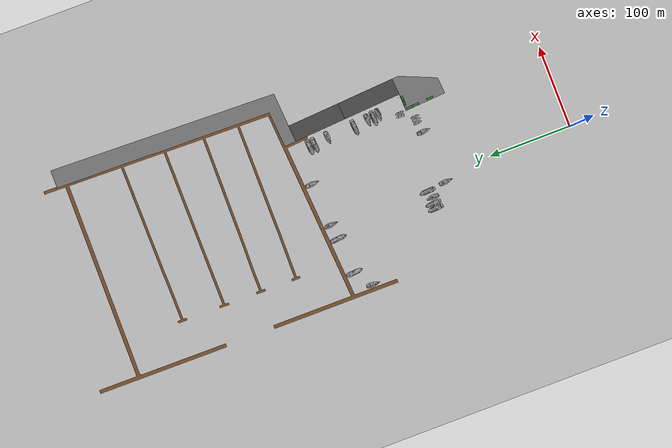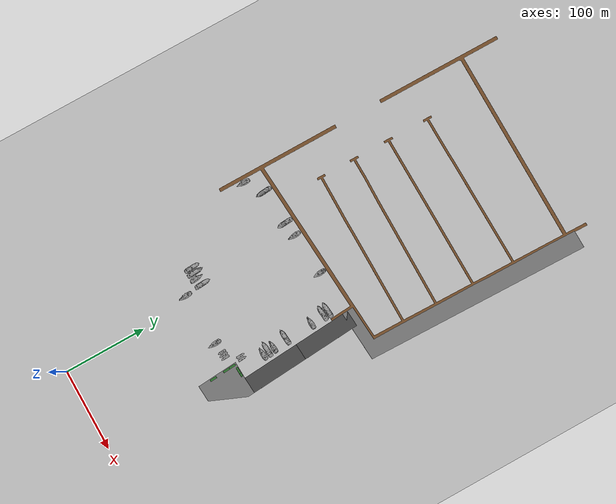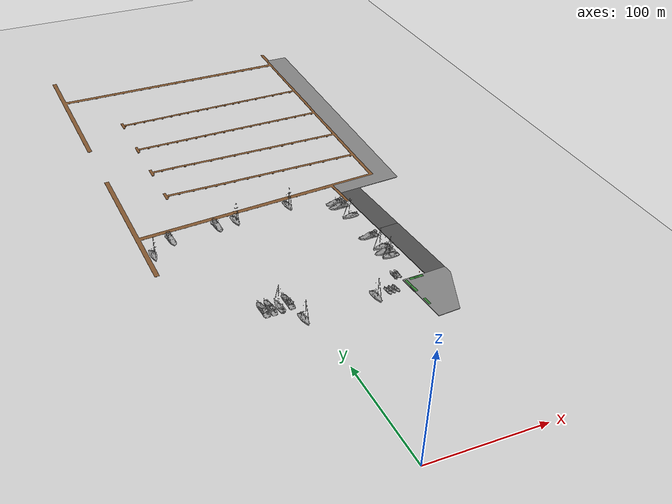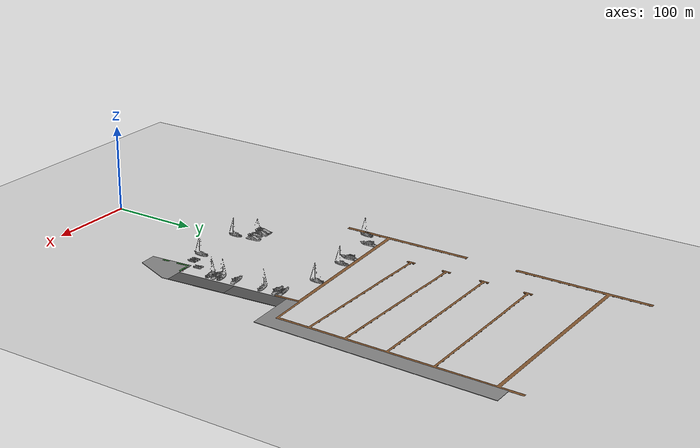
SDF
<sdf version="1.7">
 <world name="default">
  <model name="ground_plane">
   <static>1</static>
   <link name="link">
    <collision name="collision">
     <geometry><plane><normal>0 0 1</normal><size>100 100</size></plane></geometry>
     <surface><friction><ode><mu>100</mu><mu2>50</mu2></ode></friction></surface>
    </collision>
    <visual name="visual">
     <cast_shadows>0</cast_shadows>
     <geometry><plane><normal>0 0 1</normal><size>100 100</size></plane></geometry>
     <material>
      <script><uri>file://media/materials/scripts/gazebo.material</uri><name>Gazebo/Grey</name></script>
     </material>
    </visual>
   </link>
  </model>
  <model name="Marina_Zona_B">
   <link name="link">
    <inertial>
     <mass>100000</mass>
     <inertia><ixx>0</ixx><ixy>0</ixy><ixz>0</ixz><iyy>0</iyy><iyz>0</iyz><izz>0</izz></inertia>
    </inertial>
    <visual name="visual">
     <geometry>
      <mesh>
       <uri>/home/albert/marinero_ws/src/marinero_simulations/models/Marina_Zona_B/meshes/Marina_Zona_B.stl</uri>
       <scale>1 1 1</scale>
      </mesh>
     </geometry>
     <material>
      <script><uri>file://media/materials/scripts/gazebo.material</uri><name>Gazebo/Brown</name></script>
      <ambient>0.278 0.129 0.02 1</ambient>
      <diffuse>0.278 0.129 0.02 1</diffuse>
      <specular>0.278 0.129 0.02 1</specular>
      <emissive>0 0 0 1</emissive>
      <shader type="pixel"><normal_map>__default__</normal_map></shader>
     </material>
    </visual>
    <collision name="collision">
     <geometry>
      <mesh>
       <uri>/home/albert/marinero_ws/src/marinero_simulations/models/Marina_Zona_B/meshes/Marina_Zona_B.stl</uri>
       <scale>1 1 1</scale>
      </mesh>
     </geometry>
     <surface>
      <friction>
       <ode><mu>0.9</mu><mu2>0.9</mu2><fdir1>0 0 0</fdir1><slip1>0.001</slip1><slip2>1e-05</slip2></ode>
       <torsional>
        <coefficient>1</coefficient>
        <patch_radius>0</patch_radius>
        <surface_radius>0</surface_radius>
        <use_patch_radius>1</use_patch_radius>
        <ode><slip>0</slip></ode>
       </torsional>
      </friction>
      <bounce><restitution_coefficient>0</restitution_coefficient><threshold>1000</threshold></bounce>
      <contact>
       <collide_without_contact>0</collide_without_contact>
       <collide_without_contact_bitmask>0</collide_without_contact_bitmask>
       <collide_bitmask>1</collide_bitmask>
       <ode>
        <soft_cfm>0</soft_cfm>
        <soft_erp>0.2</soft_erp>
        <kp>1e+11</kp>
        <kd>100</kd>
        <max_vel>10</max_vel>
        <min_depth>0.001</min_depth>
       </ode>
       <bullet>
        <split_impulse>1</split_impulse>
        <split_impulse_penetration_threshold>-0.01</split_impulse_penetration_threshold>
        <soft_cfm>0</soft_cfm>
        <soft_erp>0.2</soft_erp>
        <kp>1e+11</kp>
        <kd>100</kd>
       </bullet>
      </contact>
     </surface>
    </collision>
   </link>
   <static>1</static>
   <pose>94.3188 292.84 0.08 0 -0 0</pose>
  </model>
  <model name="asphalt_plane_1">
   <link name="link">
    <pose>0 0 1.015 0 -0 0</pose>
    <inertial>
     <mass>1</mass>
     <inertia><ixx>1</ixx><ixy>0</ixy><ixz>0</ixz><iyy>1</iyy><iyz>0</iyz><izz>1</izz></inertia>
    </inertial>
    <visual name="visual">
     <cast_shadows>0</cast_shadows>
     <geometry><box><size>70 20 0.5</size></box></geometry>
     <material>
      <script>
       <uri>model://asphalt_plane/materials/scripts</uri>
       <uri>model://asphalt_plane/materials/textures</uri>
       <name>vrc/asphalt</name>
      </script>
      <shader type="pixel"><normal_map>__default__</normal_map></shader>
      <ambient>0.5 0.5 0.5 1</ambient>
      <diffuse>0.5 0.5 0.5 1</diffuse>
      <specular>0.2 0.2 0.2 1</specular>
      <emissive>0 0 0 1</emissive>
     </material>
    </visual>
    <collision name="collision">
     <geometry><box><size>70 20 0.5</size></box></geometry>
     <surface>
      <friction>
       <ode><mu>1</mu><mu2>1</mu2><fdir1>0 0 0</fdir1><slip1>0.001</slip1><slip2>1e-05</slip2></ode>
       <torsional>
        <coefficient>1</coefficient>
        <patch_radius>0</patch_radius>
        <surface_radius>0</surface_radius>
        <use_patch_radius>1</use_patch_radius>
        <ode><slip>0</slip></ode>
       </torsional>
      </friction>
      <bounce><restitution_coefficient>0</restitution_coefficient><threshold>1e+06</threshold></bounce>
      <contact>
       <collide_without_contact>0</collide_without_contact>
       <collide_without_contact_bitmask>1</collide_without_contact_bitmask>
       <collide_bitmask>1</collide_bitmask>
       <ode>
        <soft_cfm>0</soft_cfm>
        <soft_erp>0.2</soft_erp>
        <kp>1e+13</kp>
        <kd>1</kd>
        <max_vel>0.01</max_vel>
        <min_depth>0</min_depth>
       </ode>
       <bullet>
        <split_impulse>1</split_impulse>
        <split_impulse_penetration_threshold>-0.01</split_impulse_penetration_threshold>
        <soft_cfm>0</soft_cfm>
        <soft_erp>0.2</soft_erp>
        <kp>1e+13</kp>
        <kd>1</kd>
       </bullet>
      </contact>
     </surface>
    </collision>
   </link>
   <static>1</static>
   <pose>113.068 209.915 0 0 0 -1.5</pose>
  </model>
  <model name="asphalt_plane_1_clone">
   <link name="link">
    <pose>0 0 1.015 0 -0 0</pose>
    <inertial>
     <mass>1</mass>
     <inertia><ixx>1</ixx><ixy>0</ixy><ixz>0</ixz><iyy>1</iyy><iyz>0</iyz><izz>1</izz></inertia>
    </inertial>
    <visual name="visual">
     <cast_shadows>0</cast_shadows>
     <geometry><box><size>70 20 0.5</size></box></geometry>
     <material>
      <script>
       <uri>model://asphalt_plane/materials/scripts</uri>
       <uri>model://asphalt_plane/materials/textures</uri>
       <name>vrc/asphalt</name>
      </script>
      <shader type="pixel"><normal_map>__default__</normal_map></shader>
      <ambient>0.5 0.5 0.5 1</ambient>
      <diffuse>0.5 0.5 0.5 1</diffuse>
      <specular>0.2 0.2 0.2 1</specular>
      <emissive>0 0 0 1</emissive>
     </material>
    </visual>
    <collision name="collision">
     <geometry><box><size>70 20 0.5</size></box></geometry>
     <surface>
      <friction>
       <ode><mu>1</mu><mu2>1</mu2><fdir1>0 0 0</fdir1><slip1>0.001</slip1><slip2>1e-05</slip2></ode>
       <torsional>
        <coefficient>1</coefficient>
        <patch_radius>0</patch_radius>
        <surface_radius>0</surface_radius>
        <use_patch_radius>1</use_patch_radius>
        <ode><slip>0</slip></ode>
       </torsional>
      </friction>
      <bounce><restitution_coefficient>0</restitution_coefficient><threshold>1e+06</threshold></bounce>
      <contact>
       <collide_without_contact>0</collide_without_contact>
       <collide_without_contact_bitmask>1</collide_without_contact_bitmask>
       <collide_bitmask>1</collide_bitmask>
       <ode>
        <soft_cfm>0</soft_cfm>
        <soft_erp>0.2</soft_erp>
        <kp>1e+13</kp>
        <kd>1</kd>
        <max_vel>0.01</max_vel>
        <min_depth>0</min_depth>
       </ode>
       <bullet>
        <split_impulse>1</split_impulse>
        <split_impulse_penetration_threshold>-0.01</split_impulse_penetration_threshold>
        <soft_cfm>0</soft_cfm>
        <soft_erp>0.2</soft_erp>
        <kp>1e+13</kp>
        <kd>1</kd>
       </bullet>
      </contact>
     </surface>
    </collision>
   </link>
   <static>1</static>
   <pose>108.119 279.695 0 0 0 -1.5</pose>
  </model>
  <model name="asphalt_plane_angle_section_0">
   <link name="link">
    <inertial>
     <mass>1</mass>
     <inertia><ixx>1</ixx><ixy>0</ixy><ixz>0</ixz><iyy>1</iyy><iyz>0</iyz><izz>1</izz></inertia>
    </inertial>
    <pose>0 0 1.015 0 0 -1.4967</pose>
    <visual name="visual">
     <geometry>
      <mesh>
       <uri>/home/albert/marinero_ws/src/marinero_simulations/models/asphalt_plane_angle_section/meshes/asphalt_plane_angle_section.dae</uri>
       <scale>1 1 5</scale>
      </mesh>
     </geometry>
     <material>
      <script>
       <uri>/home/albert/marinero_ws/src/marinero_simulations/models/asphalt_plane_angle_section/materials/scripts</uri>
       <uri>/home/albert/marinero_ws/src/marinero_simulations/models/asphalt_plane_angle_section/materials/textures</uri>
       <name>asphalt/texture</name>
      </script>
      <shader type="pixel"><normal_map>__default__</normal_map></shader>
      <ambient>0.5 0.5 0.5 1</ambient>
      <diffuse>0.5 0.5 0.5 1</diffuse>
      <specular>0.2 0.2 0.2 1</specular>
      <emissive>0 0 0 1</emissive>
     </material>
    </visual>
    <collision name="collision">
     <geometry>
      <mesh>
       <uri>/home/albert/marinero_ws/src/marinero_simulations/models/asphalt_plane_angle_section/meshes/asphalt_plane_angle_section.dae</uri>
       <scale>1 1 5</scale>
      </mesh>
     </geometry>
     <surface>
      <friction>
       <ode><mu>1</mu><mu2>1</mu2><fdir1>0 0 0</fdir1><slip1>0.001</slip1><slip2>1e-05</slip2></ode>
       <torsional>
        <coefficient>1</coefficient>
        <patch_radius>0</patch_radius>
        <surface_radius>0</surface_radius>
        <use_patch_radius>1</use_patch_radius>
        <ode><slip>0</slip></ode>
       </torsional>
      </friction>
      <bounce><restitution_coefficient>0</restitution_coefficient><threshold>1e+06</threshold></bounce>
      <contact>
       <collide_without_contact>0</collide_without_contact>
       <collide_without_contact_bitmask>1</collide_without_contact_bitmask>
       <collide_bitmask>1</collide_bitmask>
       <ode>
        <soft_cfm>0</soft_cfm>
        <soft_erp>0.2</soft_erp>
        <kp>1e+13</kp>
        <kd>1</kd>
        <max_vel>0.01</max_vel>
        <min_depth>0</min_depth>
       </ode>
       <bullet>
        <split_impulse>1</split_impulse>
        <split_impulse_penetration_threshold>-0.01</split_impulse_penetration_threshold>
        <soft_cfm>0</soft_cfm>
        <soft_erp>0.2</soft_erp>
        <kp>1e+13</kp>
        <kd>1</kd>
       </bullet>
      </contact>
     </surface>
    </collision>
   </link>
   <static>1</static>
   <pose>96.4113 149.332 0 0 -0 0</pose>
  </model>
  <model name="sailboat_1_clone_1_clone_0">
   <static>1</static>
   <link name="link">
    <visual name="visual">
     <pose>0 0 1 0 0 -1.507</pose>
     <geometry>
      <mesh>
       <uri>/home/albert/marinero_ws/src/marinero_simulations/models/sailboat_1/meshes/Sailboat.stl</uri>
       <scale>1.8 1.8 1.8</scale>
      </mesh>
     </geometry>
     <material>
      <script><uri>file://media/materials/scripts/gazebo.material</uri><name>Gazebo/Grey</name></script>
     </material>
    </visual>
    <collision name="collision">
     <pose>0 0 1 0 0 -1.507</pose>
     <geometry>
      <mesh>
       <uri>/home/albert/marinero_ws/src/marinero_simulations/models/sailboat_1/meshes/Sailboat.stl</uri>
       <scale>1.8 1.8 1.8</scale>
      </mesh>
     </geometry>
    </collision>
   </link>
   <pose>42.3985 307.643 0 0 0 -3.13388</pose>
  </model>
  <model name="sailboat_1_clone_1_clone_1">
   <static>1</static>
   <link name="link">
    <visual name="visual">
     <pose>0 0 1 0 0 -1.507</pose>
     <geometry>
      <mesh>
       <uri>/home/albert/marinero_ws/src/marinero_simulations/models/sailboat_1/meshes/Sailboat.stl</uri>
       <scale>1.8 1.8 1.8</scale>
      </mesh>
     </geometry>
     <material>
      <script><uri>file://media/materials/scripts/gazebo.material</uri><name>Gazebo/Grey</name></script>
     </material>
    </visual>
    <collision name="collision">
     <pose>0 0 1 0 0 -1.507</pose>
     <geometry>
      <mesh>
       <uri>/home/albert/marinero_ws/src/marinero_simulations/models/sailboat_1/meshes/Sailboat.stl</uri>
       <scale>1.8 1.8 1.8</scale>
      </mesh>
     </geometry>
    </collision>
   </link>
   <pose>-9.86745 303.465 0 0 0 -3.13388</pose>
  </model>
  <model name="sailboat_1_0">
   <static>1</static>
   <link name="link">
    <visual name="visual">
     <pose>0 0 1 0 0 -1.507</pose>
     <geometry>
      <mesh>
       <uri>/home/albert/marinero_ws/src/marinero_simulations/models/sailboat_1/meshes/Sailboat.stl</uri>
       <scale>1.8 1.8 1.8</scale>
      </mesh>
     </geometry>
     <material>
      <script><uri>file://media/materials/scripts/gazebo.material</uri><name>Gazebo/Grey</name></script>
     </material>
    </visual>
    <collision name="collision">
     <pose>0 0 1 0 0 -1.507</pose>
     <geometry>
      <mesh>
       <uri>/home/albert/marinero_ws/src/marinero_simulations/models/sailboat_1/meshes/Sailboat.stl</uri>
       <scale>1.8 1.8 1.8</scale>
      </mesh>
     </geometry>
    </collision>
   </link>
   <pose>-21.2995 180.013 0 0 -0 0</pose>
  </model>
  <model name="sailboat_1_clone_1_clone_clone">
   <static>1</static>
   <link name="link">
    <visual name="visual">
     <pose>0 0 1 0 0 -1.507</pose>
     <geometry>
      <mesh>
       <uri>/home/albert/marinero_ws/src/marinero_simulations/models/sailboat_1/meshes/Sailboat.stl</uri>
       <scale>1.8 1.8 1.8</scale>
      </mesh>
     </geometry>
     <material>
      <script><uri>file://media/materials/scripts/gazebo.material</uri><name>Gazebo/Grey</name></script>
     </material>
    </visual>
    <collision name="collision">
     <pose>0 0 1 0 0 -1.507</pose>
     <geometry>
      <mesh>
       <uri>/home/albert/marinero_ws/src/marinero_simulations/models/sailboat_1/meshes/Sailboat.stl</uri>
       <scale>1.8 1.8 1.8</scale>
      </mesh>
     </geometry>
    </collision>
   </link>
   <pose>54.6406 163.676 0 0 0 -3.13388</pose>
  </model>
  <model name="sailboat_1_clone_1_clone_clone_0">
   <static>1</static>
   <link name="link">
    <visual name="visual">
     <pose>0 0 1 0 0 -1.507</pose>
     <geometry>
      <mesh>
       <uri>/home/albert/marinero_ws/src/marinero_simulations/models/sailboat_1/meshes/Sailboat.stl</uri>
       <scale>1.8 1.8 1.8</scale>
      </mesh>
     </geometry>
     <material>
      <script><uri>file://media/materials/scripts/gazebo.material</uri><name>Gazebo/Grey</name></script>
     </material>
    </visual>
    <collision name="collision">
     <pose>0 0 1 0 0 -1.507</pose>
     <geometry>
      <mesh>
       <uri>/home/albert/marinero_ws/src/marinero_simulations/models/sailboat_1/meshes/Sailboat.stl</uri>
       <scale>1.8 1.8 1.8</scale>
      </mesh>
     </geometry>
    </collision>
   </link>
   <pose>-9.56395 160.572 0 0 0 -3.13388</pose>
  </model>
  <model name="sailboat_1_clone_1_clone_clone_0_clone">
   <static>1</static>
   <link name="link">
    <visual name="visual">
     <pose>0 0 1 0 0 -1.507</pose>
     <geometry>
      <mesh>
       <uri>/home/albert/marinero_ws/src/marinero_simulations/models/sailboat_1/meshes/Sailboat.stl</uri>
       <scale>1.8 1.8 1.8</scale>
      </mesh>
     </geometry>
     <material>
      <script><uri>file://media/materials/scripts/gazebo.material</uri><name>Gazebo/Grey</name></script>
     </material>
    </visual>
    <collision name="collision">
     <pose>0 0 1 0 0 -1.507</pose>
     <geometry>
      <mesh>
       <uri>/home/albert/marinero_ws/src/marinero_simulations/models/sailboat_1/meshes/Sailboat.stl</uri>
       <scale>1.8 1.8 1.8</scale>
      </mesh>
     </geometry>
    </collision>
   </link>
   <pose>-91.8625 281.936 0 0 -0 3.06385</pose>
  </model>
  <model name="sailboat_1_clone_1_clone_clone_0_clone_0">
   <static>1</static>
   <link name="link">
    <visual name="visual">
     <pose>0 0 1 0 0 -1.507</pose>
     <geometry>
      <mesh>
       <uri>/home/albert/marinero_ws/src/marinero_simulations/models/sailboat_1/meshes/Sailboat.stl</uri>
       <scale>1.8 1.8 1.8</scale>
      </mesh>
     </geometry>
     <material>
      <script><uri>file://media/materials/scripts/gazebo.material</uri><name>Gazebo/Grey</name></script>
     </material>
    </visual>
    <collision name="collision">
     <pose>0 0 1 0 0 -1.507</pose>
     <geometry>
      <mesh>
       <uri>/home/albert/marinero_ws/src/marinero_simulations/models/sailboat_1/meshes/Sailboat.stl</uri>
       <scale>1.8 1.8 1.8</scale>
      </mesh>
     </geometry>
    </collision>
   </link>
   <pose>87.9063 270.83 0 0 -0 1.58681</pose>
  </model>
  <model name="sailboat_1_clone_1_clone_clone_clone">
   <static>1</static>
   <link name="link">
    <visual name="visual">
     <pose>0 0 1 0 0 -1.507</pose>
     <geometry>
      <mesh>
       <uri>/home/albert/marinero_ws/src/marinero_simulations/models/sailboat_1/meshes/Sailboat.stl</uri>
       <scale>1.8 1.8 1.8</scale>
      </mesh>
     </geometry>
     <material>
      <script><uri>file://media/materials/scripts/gazebo.material</uri><name>Gazebo/Grey</name></script>
     </material>
    </visual>
    <collision name="collision">
     <pose>0 0 1 0 0 -1.507</pose>
     <geometry>
      <mesh>
       <uri>/home/albert/marinero_ws/src/marinero_simulations/models/sailboat_1/meshes/Sailboat.stl</uri>
       <scale>1.8 1.8 1.8</scale>
      </mesh>
     </geometry>
    </collision>
   </link>
   <pose>92.1811 205.663 0 0 -0 1.5819</pose>
  </model>
  <model name="sailboat_1_clone_1_clone_clone_clone_clone">
   <static>1</static>
   <link name="link">
    <visual name="visual">
     <pose>0 0 1 0 0 -1.507</pose>
     <geometry>
      <mesh>
       <uri>/home/albert/marinero_ws/src/marinero_simulations/models/sailboat_1/meshes/Sailboat.stl</uri>
       <scale>1.8 1.8 1.8</scale>
      </mesh>
     </geometry>
     <material>
      <script><uri>file://media/materials/scripts/gazebo.material</uri><name>Gazebo/Grey</name></script>
     </material>
    </visual>
    <collision name="collision">
     <pose>0 0 1 0 0 -1.507</pose>
     <geometry>
      <mesh>
       <uri>/home/albert/marinero_ws/src/marinero_simulations/models/sailboat_1/meshes/Sailboat.stl</uri>
       <scale>1.8 1.8 1.8</scale>
      </mesh>
     </geometry>
    </collision>
   </link>
   <pose>90.8564 219.638 0 0 -0 1.5819</pose>
  </model>
  <model name="speedboat_clone_3_clone_11_clone_1_clone_clone_0_clone_1">
   <static>1</static>
   <link name="link">
    <visual name="visual">
     <pose>0 0 0.2 0 -0 1.57</pose>
     <geometry>
      <mesh>
       <uri>/home/albert/marinero_ws/src/marinero_simulations/models/speedboat/meshes/Speedboat.stl</uri>
       <scale>2 2 2</scale>
      </mesh>
     </geometry>
     <material>
      <script><uri>file://media/materials/scripts/gazebo.material</uri><name>Gazebo/Grey</name></script>
     </material>
    </visual>
    <collision name="collision">
     <pose>0 0 0.2 0 -0 1.57</pose>
     <geometry>
      <mesh>
       <uri>/home/albert/marinero_ws/src/marinero_simulations/models/sailboat_1/meshes/Speedboat.stl</uri>
       <scale>2 2 2</scale>
      </mesh>
     </geometry>
    </collision>
   </link>
   <pose>74.4107 165.424 0 0 0 -3.07382</pose>
  </model>
  <model name="speedboat_clone_3_clone_11_clone_1_clone_clone_0_clone_2">
   <static>1</static>
   <link name="link">
    <visual name="visual">
     <pose>0 0 0.2 0 -0 1.57</pose>
     <geometry>
      <mesh>
       <uri>/home/albert/marinero_ws/src/marinero_simulations/models/speedboat/meshes/Speedboat.stl</uri>
       <scale>2 2 2</scale>
      </mesh>
     </geometry>
     <material>
      <script><uri>file://media/materials/scripts/gazebo.material</uri><name>Gazebo/Grey</name></script>
     </material>
    </visual>
    <collision name="collision">
     <pose>0 0 0.2 0 -0 1.57</pose>
     <geometry>
      <mesh>
       <uri>/home/albert/marinero_ws/src/marinero_simulations/models/sailboat_1/meshes/Speedboat.stl</uri>
       <scale>2 2 2</scale>
      </mesh>
     </geometry>
    </collision>
   </link>
   <pose>70.5586 165.313 0 0 0 -3.07382</pose>
  </model>
  <model name="speedboat_clone_3_clone_11_clone_1_clone_clone_0_clone_3">
   <static>1</static>
   <link name="link">
    <visual name="visual">
     <pose>0 0 0.2 0 -0 1.57</pose>
     <geometry>
      <mesh>
       <uri>/home/albert/marinero_ws/src/marinero_simulations/models/speedboat/meshes/Speedboat.stl</uri>
       <scale>2 2 2</scale>
      </mesh>
     </geometry>
     <material>
      <script><uri>file://media/materials/scripts/gazebo.material</uri><name>Gazebo/Grey</name></script>
     </material>
    </visual>
    <collision name="collision">
     <pose>0 0 0.2 0 -0 1.57</pose>
     <geometry>
      <mesh>
       <uri>/home/albert/marinero_ws/src/marinero_simulations/models/sailboat_1/meshes/Speedboat.stl</uri>
       <scale>2 2 2</scale>
      </mesh>
     </geometry>
    </collision>
   </link>
   <pose>66.8859 165.091 0 0 0 -3.07382</pose>
  </model>
  <model name="yacht_1_2">
   <static>1</static>
   <link name="link">
    <visual name="visual">
     <pose>0 0 0.35 0 -0 0</pose>
     <geometry>
      <mesh>
       <uri>/home/albert/marinero_ws/src/marinero_simulations/models/yacht_1/meshes/Yacht_1.stl</uri>
       <scale>2.2 2.2 2.2</scale>
      </mesh>
     </geometry>
     <material>
      <script><uri>file://media/materials/scripts/gazebo.material</uri><name>Gazebo/Grey</name></script>
     </material>
    </visual>
    <collision name="collision">
     <pose>0 0 0.35 0 -0 0</pose>
     <geometry>
      <mesh>
       <uri>/home/albert/marinero_ws/src/marinero_simulations/models/yacht_1/meshes/Yacht_1.stl</uri>
       <scale>2.2 2.2 2.2</scale>
      </mesh>
     </geometry>
    </collision>
   </link>
   <pose>85.1845 287.848 0 0 0 -1.48602</pose>
  </model>
  <model name="yacht_1_2_clone">
   <static>1</static>
   <link name="link">
    <visual name="visual">
     <pose>0 0 0.35 0 -0 0</pose>
     <geometry>
      <mesh>
       <uri>/home/albert/marinero_ws/src/marinero_simulations/models/yacht_1/meshes/Yacht_1.stl</uri>
       <scale>2.2 2.2 2.2</scale>
      </mesh>
     </geometry>
     <material>
      <script><uri>file://media/materials/scripts/gazebo.material</uri><name>Gazebo/Grey</name></script>
     </material>
    </visual>
    <collision name="collision">
     <pose>0 0 0.35 0 -0 0</pose>
     <geometry>
      <mesh>
       <uri>/home/albert/marinero_ws/src/marinero_simulations/models/yacht_1/meshes/Yacht_1.stl</uri>
       <scale>2.2 2.2 2.2</scale>
      </mesh>
     </geometry>
    </collision>
   </link>
   <pose>84.6988 294.401 0 0 0 -1.48602</pose>
  </model>
  <model name="yacht_1_2_clone_0">
   <static>1</static>
   <link name="link">
    <visual name="visual">
     <pose>0 0 0.35 0 -0 0</pose>
     <geometry>
      <mesh>
       <uri>/home/albert/marinero_ws/src/marinero_simulations/models/yacht_1/meshes/Yacht_1.stl</uri>
       <scale>2.2 2.2 2.2</scale>
      </mesh>
     </geometry>
     <material>
      <script><uri>file://media/materials/scripts/gazebo.material</uri><name>Gazebo/Grey</name></script>
     </material>
    </visual>
    <collision name="collision">
     <pose>0 0 0.35 0 -0 0</pose>
     <geometry>
      <mesh>
       <uri>/home/albert/marinero_ws/src/marinero_simulations/models/yacht_1/meshes/Yacht_1.stl</uri>
       <scale>2.2 2.2 2.2</scale>
      </mesh>
     </geometry>
    </collision>
   </link>
   <pose>88.3979 237.109 0 0 0 -1.48602</pose>
  </model>
  <model name="yacht_1_2_clone_0_clone">
   <static>1</static>
   <link name="link">
    <visual name="visual">
     <pose>0 0 0.35 0 -0 0</pose>
     <geometry>
      <mesh>
       <uri>/home/albert/marinero_ws/src/marinero_simulations/models/yacht_1/meshes/Yacht_1.stl</uri>
       <scale>2.2 2.2 2.2</scale>
      </mesh>
     </geometry>
     <material>
      <script><uri>file://media/materials/scripts/gazebo.material</uri><name>Gazebo/Grey</name></script>
     </material>
    </visual>
    <collision name="collision">
     <pose>0 0 0.35 0 -0 0</pose>
     <geometry>
      <mesh>
       <uri>/home/albert/marinero_ws/src/marinero_simulations/models/yacht_1/meshes/Yacht_1.stl</uri>
       <scale>2.2 2.2 2.2</scale>
      </mesh>
     </geometry>
    </collision>
   </link>
   <pose>90.3958 212.299 0 0 0 -1.48602</pose>
  </model>
  <model name="yacht_1_0_clone">
   <static>1</static>
   <link name="link">
    <visual name="visual">
     <pose>0 0 0.35 0 -0 0</pose>
     <geometry>
      <mesh>
       <uri>/home/albert/marinero_ws/src/marinero_simulations/models/yacht_1/meshes/Yacht_1.stl</uri>
       <scale>2.2 2.2 2.2</scale>
      </mesh>
     </geometry>
     <material>
      <script><uri>file://media/materials/scripts/gazebo.material</uri><name>Gazebo/Grey</name></script>
     </material>
    </visual>
    <collision name="collision">
     <pose>0 0 0.35 0 -0 0</pose>
     <geometry>
      <mesh>
       <uri>/home/albert/marinero_ws/src/marinero_simulations/models/yacht_1/meshes/Yacht_1.stl</uri>
       <scale>2.2 2.2 2.2</scale>
      </mesh>
     </geometry>
    </collision>
   </link>
   <pose>-12.584 182.815 0 0 0 -3.08273</pose>
  </model>
  <model name="yacht_1_0_clone_clone">
   <static>1</static>
   <link name="link">
    <visual name="visual">
     <pose>0 0 0.35 0 -0 0</pose>
     <geometry>
      <mesh>
       <uri>/home/albert/marinero_ws/src/marinero_simulations/models/yacht_1/meshes/Yacht_1.stl</uri>
       <scale>2.2 2.2 2.2</scale>
      </mesh>
     </geometry>
     <material>
      <script><uri>file://media/materials/scripts/gazebo.material</uri><name>Gazebo/Grey</name></script>
     </material>
    </visual>
    <collision name="collision">
     <pose>0 0 0.35 0 -0 0</pose>
     <geometry>
      <mesh>
       <uri>/home/albert/marinero_ws/src/marinero_simulations/models/yacht_1/meshes/Yacht_1.stl</uri>
       <scale>2.2 2.2 2.2</scale>
      </mesh>
     </geometry>
    </collision>
   </link>
   <pose>-28.2885 181.35 0 0 0 -3.08273</pose>
  </model>
  <model name="yacht_1_0_clone_clone_0">
   <static>1</static>
   <link name="link">
    <visual name="visual">
     <pose>0 0 0.35 0 -0 0</pose>
     <geometry>
      <mesh>
       <uri>/home/albert/marinero_ws/src/marinero_simulations/models/yacht_1/meshes/Yacht_1.stl</uri>
       <scale>2.2 2.2 2.2</scale>
      </mesh>
     </geometry>
     <material>
      <script><uri>file://media/materials/scripts/gazebo.material</uri><name>Gazebo/Grey</name></script>
     </material>
    </visual>
    <collision name="collision">
     <pose>0 0 0.35 0 -0 0</pose>
     <geometry>
      <mesh>
       <uri>/home/albert/marinero_ws/src/marinero_simulations/models/yacht_1/meshes/Yacht_1.stl</uri>
       <scale>2.2 2.2 2.2</scale>
      </mesh>
     </geometry>
    </collision>
   </link>
   <pose>-34.6717 181.117 0 0 0 -3.08273</pose>
  </model>
  <model name="yacht_1_0_clone_clone_1">
   <static>1</static>
   <link name="link">
    <visual name="visual">
     <pose>0 0 0.35 0 -0 0</pose>
     <geometry>
      <mesh>
       <uri>/home/albert/marinero_ws/src/marinero_simulations/models/yacht_1/meshes/Yacht_1.stl</uri>
       <scale>2.2 2.2 2.2</scale>
      </mesh>
     </geometry>
     <material>
      <script><uri>file://media/materials/scripts/gazebo.material</uri><name>Gazebo/Grey</name></script>
     </material>
    </visual>
    <collision name="collision">
     <pose>0 0 0.35 0 -0 0</pose>
     <geometry>
      <mesh>
       <uri>/home/albert/marinero_ws/src/marinero_simulations/models/yacht_1/meshes/Yacht_1.stl</uri>
       <scale>2.2 2.2 2.2</scale>
      </mesh>
     </geometry>
    </collision>
   </link>
   <pose>-27.9061 301.447 0 0 -0 0.07617</pose>
  </model>
  <model name="yacht_1_0_clone_clone_1_clone">
   <static>1</static>
   <link name="link">
    <visual name="visual">
     <pose>0 0 0.35 0 -0 0</pose>
     <geometry>
      <mesh>
       <uri>/home/albert/marinero_ws/src/marinero_simulations/models/yacht_1/meshes/Yacht_1.stl</uri>
       <scale>2.2 2.2 2.2</scale>
      </mesh>
     </geometry>
     <material>
      <script><uri>file://media/materials/scripts/gazebo.material</uri><name>Gazebo/Grey</name></script>
     </material>
    </visual>
    <collision name="collision">
     <pose>0 0 0.35 0 -0 0</pose>
     <geometry>
      <mesh>
       <uri>/home/albert/marinero_ws/src/marinero_simulations/models/yacht_1/meshes/Yacht_1.stl</uri>
       <scale>2.2 2.2 2.2</scale>
      </mesh>
     </geometry>
    </collision>
   </link>
   <pose>-71.3947 297.809 0 0 -0 0.07617</pose>
  </model>
  <model name="asphalt_plane_zone_B_0">
   <link name="link">
    <inertial>
     <mass>1</mass>
     <inertia><ixx>1</ixx><ixy>0</ixy><ixz>0</ixz><iyy>1</iyy><iyz>0</iyz><izz>1</izz></inertia>
    </inertial>
    <pose>0 0 1.015 0 0 -0.045</pose>
    <visual name="visual">
     <geometry>
      <mesh>
       <uri>/home/albert/marinero_ws/src/marinero_simulations/models/asphalt_plane_zone_B/meshes/asphalt_plane_zone_B.dae</uri>
       <scale>1 1 1</scale>
      </mesh>
     </geometry>
     <material>
      <script>
       <uri>/home/albert/marinero_ws/src/marinero_simulations/models/asphalt_plane_zone_B/materials/scripts</uri>
       <uri>/home/albert/marinero_ws/src/marinero_simulations/models/asphalt_plane_zone_B/materials/textures/tarmac.png</uri>
       <name>asphalt_B/texture</name>
      </script>
      <shader type="pixel"><normal_map>__default__</normal_map></shader>
      <ambient>0.5 0.5 0.5 1</ambient>
      <diffuse>0.5 0.5 0.5 1</diffuse>
      <specular>0.2 0.2 0.2 1</specular>
      <emissive>0 0 0 1</emissive>
     </material>
    </visual>
    <collision name="collision">
     <geometry>
      <mesh>
       <uri>/home/albert/marinero_ws/src/marinero_simulations/models/asphalt_plane_zone_B/meshes/asphalt_plane_zone_B.dae</uri>
       <scale>1 1 1</scale>
      </mesh>
     </geometry>
     <surface>
      <friction>
       <ode><mu>1</mu><mu2>1</mu2><fdir1>0 0 0</fdir1><slip1>0.001</slip1><slip2>1e-05</slip2></ode>
       <torsional>
        <coefficient>1</coefficient>
        <patch_radius>0</patch_radius>
        <surface_radius>0</surface_radius>
        <use_patch_radius>1</use_patch_radius>
        <ode><slip>0</slip></ode>
       </torsional>
      </friction>
      <bounce><restitution_coefficient>0</restitution_coefficient><threshold>1e+06</threshold></bounce>
      <contact>
       <collide_without_contact>0</collide_without_contact>
       <collide_without_contact_bitmask>1</collide_without_contact_bitmask>
       <collide_bitmask>1</collide_bitmask>
       <ode>
        <soft_cfm>0</soft_cfm>
        <soft_erp>0.2</soft_erp>
        <kp>1e+13</kp>
        <kd>1</kd>
        <max_vel>0.01</max_vel>
        <min_depth>0</min_depth>
       </ode>
       <bullet>
        <split_impulse>1</split_impulse>
        <split_impulse_penetration_threshold>-0.01</split_impulse_penetration_threshold>
        <soft_cfm>0</soft_cfm>
        <soft_erp>0.2</soft_erp>
        <kp>1e+13</kp>
        <kd>1</kd>
       </bullet>
      </contact>
     </surface>
    </collision>
   </link>
   <static>1</static>
   <pose>96.1305 307.4 0 0 -0 0</pose>
  </model>
  <model name="grass_plane_SM_1_clone_clone_clone">
   <link name="link">
    <pose>0 0 1.255 0 0 -1.5905</pose>
    <inertial>
     <mass>1</mass>
     <inertia><ixx>1</ixx><ixy>0</ixy><ixz>0</ixz><iyy>1</iyy><iyz>0</iyz><izz>1</izz></inertia>
    </inertial>
    <visual name="visual">
     <cast_shadows>0</cast_shadows>
     <geometry><box><size>8 2.25 0.1</size></box></geometry>
     <material>
      <script>
       <uri>/home/albert/marinero_ws/src/marinero_simulations/models/grass_plane_SM/materials/scripts</uri>
       <uri>/home/albert/marinero_ws/src/marinero_simulations/models/grass_plane_SM/materials/textures/grass.jpg</uri>
       <name>grass_SM/texture</name>
      </script>
      <shader type="pixel"><normal_map>__default__</normal_map></shader>
      <ambient>0.2 0.5 0.2 1</ambient>
      <diffuse>0.2 0.5 0.2 1</diffuse>
      <specular>0.2 0.2 0.2 1</specular>
      <emissive>0 0 0 1</emissive>
     </material>
    </visual>
    <collision name="collision">
     <geometry><box><size>8 2.25 0.1</size></box></geometry>
     <surface>
      <friction>
       <ode><mu>1</mu><mu2>1</mu2><fdir1>0 0 0</fdir1><slip1>0.001</slip1><slip2>1e-05</slip2></ode>
       <torsional>
        <coefficient>1</coefficient>
        <patch_radius>0</patch_radius>
        <surface_radius>0</surface_radius>
        <use_patch_radius>1</use_patch_radius>
        <ode><slip>0</slip></ode>
       </torsional>
      </friction>
      <bounce><restitution_coefficient>0</restitution_coefficient><threshold>1e+06</threshold></bounce>
      <contact>
       <collide_without_contact>0</collide_without_contact>
       <collide_without_contact_bitmask>1</collide_without_contact_bitmask>
       <collide_bitmask>1</collide_bitmask>
       <ode>
        <soft_cfm>0</soft_cfm>
        <soft_erp>0.2</soft_erp>
        <kp>1e+13</kp>
        <kd>1</kd>
        <max_vel>0.01</max_vel>
        <min_depth>0</min_depth>
       </ode>
       <bullet>
        <split_impulse>1</split_impulse>
        <split_impulse_penetration_threshold>-0.01</split_impulse_penetration_threshold>
        <soft_cfm>0</soft_cfm>
        <soft_erp>0.2</soft_erp>
        <kp>1e+13</kp>
        <kd>1</kd>
       </bullet>
      </contact>
     </surface>
    </collision>
   </link>
   <static>1</static>
   <pose>98.6917 172.332 0 0 0 -1.51</pose>
  </model>
  <model name="grass_plane_SM_1_clone_clone_clone_0">
   <link name="link">
    <pose>0 0 1.255 0 0 -1.5905</pose>
    <inertial>
     <mass>1</mass>
     <inertia><ixx>1</ixx><ixy>0</ixy><ixz>0</ixz><iyy>1</iyy><iyz>0</iyz><izz>1</izz></inertia>
    </inertial>
    <visual name="visual">
     <cast_shadows>0</cast_shadows>
     <geometry><box><size>8 2.25 0.1</size></box></geometry>
     <material>
      <script>
       <uri>/home/albert/marinero_ws/src/marinero_simulations/models/grass_plane_SM/materials/scripts</uri>
       <uri>/home/albert/marinero_ws/src/marinero_simulations/models/grass_plane_SM/materials/textures/grass.jpg</uri>
       <name>grass_SM/texture</name>
      </script>
      <shader type="pixel"><normal_map>__default__</normal_map></shader>
      <ambient>0.2 0.5 0.2 1</ambient>
      <diffuse>0.2 0.5 0.2 1</diffuse>
      <specular>0.2 0.2 0.2 1</specular>
      <emissive>0 0 0 1</emissive>
     </material>
    </visual>
    <collision name="collision">
     <geometry><box><size>8 2.25 0.1</size></box></geometry>
     <surface>
      <friction>
       <ode><mu>1</mu><mu2>1</mu2><fdir1>0 0 0</fdir1><slip1>0.001</slip1><slip2>1e-05</slip2></ode>
       <torsional>
        <coefficient>1</coefficient>
        <patch_radius>0</patch_radius>
        <surface_radius>0</surface_radius>
        <use_patch_radius>1</use_patch_radius>
        <ode><slip>0</slip></ode>
       </torsional>
      </friction>
      <bounce><restitution_coefficient>0</restitution_coefficient><threshold>1e+06</threshold></bounce>
      <contact>
       <collide_without_contact>0</collide_without_contact>
       <collide_without_contact_bitmask>1</collide_without_contact_bitmask>
       <collide_bitmask>1</collide_bitmask>
       <ode>
        <soft_cfm>0</soft_cfm>
        <soft_erp>0.2</soft_erp>
        <kp>1e+13</kp>
        <kd>1</kd>
        <max_vel>0.01</max_vel>
        <min_depth>0</min_depth>
       </ode>
       <bullet>
        <split_impulse>1</split_impulse>
        <split_impulse_penetration_threshold>-0.01</split_impulse_penetration_threshold>
        <soft_cfm>0</soft_cfm>
        <soft_erp>0.2</soft_erp>
        <kp>1e+13</kp>
        <kd>1</kd>
       </bullet>
      </contact>
     </surface>
    </collision>
   </link>
   <static>1</static>
   <pose>94.4494 172.159 0 0 0 -1.51</pose>
  </model>
  <model name="speedboat_clone_4_clone_clone_2_clone">
   <static>1</static>
   <link name="link">
    <visual name="visual">
     <pose>0 0 0.2 0 -0 1.57</pose>
     <geometry>
      <mesh>
       <uri>/home/albert/marinero_ws/src/marinero_simulations/models/speedboat/meshes/Speedboat.stl</uri>
       <scale>2 2 2</scale>
      </mesh>
     </geometry>
     <material>
      <script><uri>file://media/materials/scripts/gazebo.material</uri><name>Gazebo/Grey</name></script>
     </material>
    </visual>
    <collision name="collision">
     <pose>0 0 0.2 0 -0 1.57</pose>
     <geometry>
      <mesh>
       <uri>/home/albert/marinero_ws/src/marinero_simulations/models/sailboat_1/meshes/Speedboat.stl</uri>
       <scale>2 2 2</scale>
      </mesh>
     </geometry>
    </collision>
   </link>
   <pose>84.7415 182.83 0 0 -0 0.057421</pose>
  </model>
  <model name="speedboat_clone_4_clone_clone_2_clone_clone">
   <static>1</static>
   <link name="link">
    <visual name="visual">
     <pose>0 0 0.2 0 -0 1.57</pose>
     <geometry>
      <mesh>
       <uri>/home/albert/marinero_ws/src/marinero_simulations/models/speedboat/meshes/Speedboat.stl</uri>
       <scale>2 2 2</scale>
      </mesh>
     </geometry>
     <material>
      <script><uri>file://media/materials/scripts/gazebo.material</uri><name>Gazebo/Grey</name></script>
     </material>
    </visual>
    <collision name="collision">
     <pose>0 0 0.2 0 -0 1.57</pose>
     <geometry>
      <mesh>
       <uri>/home/albert/marinero_ws/src/marinero_simulations/models/sailboat_1/meshes/Speedboat.stl</uri>
       <scale>2 2 2</scale>
      </mesh>
     </geometry>
    </collision>
   </link>
   <pose>80.8775 182.684 0 0 -0 0.057421</pose>
  </model>
  <model name="grass_plane_SM_4">
   <link name="link">
    <pose>0 0 1.255 0 0 -1.5905</pose>
    <inertial>
     <mass>1</mass>
     <inertia><ixx>1</ixx><ixy>0</ixy><ixz>0</ixz><iyy>1</iyy><iyz>0</iyz><izz>1</izz></inertia>
    </inertial>
    <visual name="visual">
     <cast_shadows>0</cast_shadows>
     <geometry><box><size>8 2.25 0.1</size></box></geometry>
     <material>
      <script>
       <uri>/home/albert/marinero_ws/src/marinero_simulations/models/grass_plane_SM/materials/scripts</uri>
       <uri>/home/albert/marinero_ws/src/marinero_simulations/models/grass_plane_SM/materials/textures/grass.jpg</uri>
       <name>grass_SM/texture</name>
      </script>
      <shader type="pixel"><normal_map>__default__</normal_map></shader>
      <ambient>0.2 0.5 0.2 1</ambient>
      <diffuse>0.2 0.5 0.2 1</diffuse>
      <specular>0.2 0.2 0.2 1</specular>
      <emissive>0 0 0 1</emissive>
     </material>
    </visual>
    <collision name="collision">
     <geometry><box><size>8 2.25 0.1</size></box></geometry>
     <surface>
      <friction>
       <ode><mu>1</mu><mu2>1</mu2><fdir1>0 0 0</fdir1><slip1>0.001</slip1><slip2>1e-05</slip2></ode>
       <torsional>
        <coefficient>1</coefficient>
        <patch_radius>0</patch_radius>
        <surface_radius>0</surface_radius>
        <use_patch_radius>1</use_patch_radius>
        <ode><slip>0</slip></ode>
       </torsional>
      </friction>
      <bounce><restitution_coefficient>0</restitution_coefficient><threshold>1e+06</threshold></bounce>
      <contact>
       <collide_without_contact>0</collide_without_contact>
       <collide_without_contact_bitmask>1</collide_without_contact_bitmask>
       <collide_bitmask>1</collide_bitmask>
       <ode>
        <soft_cfm>0</soft_cfm>
        <soft_erp>0.2</soft_erp>
        <kp>1e+13</kp>
        <kd>1</kd>
        <max_vel>0.01</max_vel>
        <min_depth>0</min_depth>
       </ode>
       <bullet>
        <split_impulse>1</split_impulse>
        <split_impulse_penetration_threshold>-0.01</split_impulse_penetration_threshold>
        <soft_cfm>0</soft_cfm>
        <soft_erp>0.2</soft_erp>
        <kp>1e+13</kp>
        <kd>1</kd>
       </bullet>
      </contact>
     </surface>
    </collision>
   </link>
   <static>1</static>
   <pose>87.0578 168.194 0 0 -0 0.0925</pose>
  </model>
  <model name="grass_plane_SM_4_clone">
   <link name="link">
    <pose>0 0 1.255 0 0 -1.5905</pose>
    <inertial>
     <mass>1</mass>
     <inertia><ixx>1</ixx><ixy>0</ixy><ixz>0</ixz><iyy>1</iyy><iyz>0</iyz><izz>1</izz></inertia>
    </inertial>
    <visual name="visual">
     <cast_shadows>0</cast_shadows>
     <geometry><box><size>8 2.25 0.1</size></box></geometry>
     <material>
      <script>
       <uri>/home/albert/marinero_ws/src/marinero_simulations/models/grass_plane_SM/materials/scripts</uri>
       <uri>/home/albert/marinero_ws/src/marinero_simulations/models/grass_plane_SM/materials/textures/grass.jpg</uri>
       <name>grass_SM/texture</name>
      </script>
      <shader type="pixel"><normal_map>__default__</normal_map></shader>
      <ambient>0.2 0.5 0.2 1</ambient>
      <diffuse>0.2 0.5 0.2 1</diffuse>
      <specular>0.2 0.2 0.2 1</specular>
      <emissive>0 0 0 1</emissive>
     </material>
    </visual>
    <collision name="collision">
     <geometry><box><size>8 2.25 0.1</size></box></geometry>
     <surface>
      <friction>
       <ode><mu>1</mu><mu2>1</mu2><fdir1>0 0 0</fdir1><slip1>0.001</slip1><slip2>1e-05</slip2></ode>
       <torsional>
        <coefficient>1</coefficient>
        <patch_radius>0</patch_radius>
        <surface_radius>0</surface_radius>
        <use_patch_radius>1</use_patch_radius>
        <ode><slip>0</slip></ode>
       </torsional>
      </friction>
      <bounce><restitution_coefficient>0</restitution_coefficient><threshold>1e+06</threshold></bounce>
      <contact>
       <collide_without_contact>0</collide_without_contact>
       <collide_without_contact_bitmask>1</collide_without_contact_bitmask>
       <collide_bitmask>1</collide_bitmask>
       <ode>
        <soft_cfm>0</soft_cfm>
        <soft_erp>0.2</soft_erp>
        <kp>1e+13</kp>
        <kd>1</kd>
        <max_vel>0.01</max_vel>
        <min_depth>0</min_depth>
       </ode>
       <bullet>
        <split_impulse>1</split_impulse>
        <split_impulse_penetration_threshold>-0.01</split_impulse_penetration_threshold>
        <soft_cfm>0</soft_cfm>
        <soft_erp>0.2</soft_erp>
        <kp>1e+13</kp>
        <kd>1</kd>
       </bullet>
      </contact>
     </surface>
    </collision>
   </link>
   <static>1</static>
   <pose>87.6378 160.241 0 0 -0 0.0925</pose>
  </model>
  <model name="grass_plane_SM_4_clone_clone">
   <link name="link">
    <pose>0 0 1.255 0 0 -1.5905</pose>
    <inertial>
     <mass>1</mass>
     <inertia><ixx>1</ixx><ixy>0</ixy><ixz>0</ixz><iyy>1</iyy><iyz>0</iyz><izz>1</izz></inertia>
    </inertial>
    <visual name="visual">
     <cast_shadows>0</cast_shadows>
     <geometry><box><size>8 2.25 0.1</size></box></geometry>
     <material>
      <script>
       <uri>/home/albert/marinero_ws/src/marinero_simulations/models/grass_plane_SM/materials/scripts</uri>
       <uri>/home/albert/marinero_ws/src/marinero_simulations/models/grass_plane_SM/materials/textures/grass.jpg</uri>
       <name>grass_SM/texture</name>
      </script>
      <shader type="pixel"><normal_map>__default__</normal_map></shader>
      <ambient>0.2 0.5 0.2 1</ambient>
      <diffuse>0.2 0.5 0.2 1</diffuse>
      <specular>0.2 0.2 0.2 1</specular>
      <emissive>0 0 0 1</emissive>
     </material>
    </visual>
    <collision name="collision">
     <geometry><box><size>8 2.25 0.1</size></box></geometry>
     <surface>
      <friction>
       <ode><mu>1</mu><mu2>1</mu2><fdir1>0 0 0</fdir1><slip1>0.001</slip1><slip2>1e-05</slip2></ode>
       <torsional>
        <coefficient>1</coefficient>
        <patch_radius>0</patch_radius>
        <surface_radius>0</surface_radius>
        <use_patch_radius>1</use_patch_radius>
        <ode><slip>0</slip></ode>
       </torsional>
      </friction>
      <bounce><restitution_coefficient>0</restitution_coefficient><threshold>1e+06</threshold></bounce>
      <contact>
       <collide_without_contact>0</collide_without_contact>
       <collide_without_contact_bitmask>1</collide_without_contact_bitmask>
       <collide_bitmask>1</collide_bitmask>
       <ode>
        <soft_cfm>0</soft_cfm>
        <soft_erp>0.2</soft_erp>
        <kp>1e+13</kp>
        <kd>1</kd>
        <max_vel>0.01</max_vel>
        <min_depth>0</min_depth>
       </ode>
       <bullet>
        <split_impulse>1</split_impulse>
        <split_impulse_penetration_threshold>-0.01</split_impulse_penetration_threshold>
        <soft_cfm>0</soft_cfm>
        <soft_erp>0.2</soft_erp>
        <kp>1e+13</kp>
        <kd>1</kd>
       </bullet>
      </contact>
     </surface>
    </collision>
   </link>
   <static>1</static>
   <pose>89.0232 142.561 0 0 -0 0.0925</pose>
  </model>
  <model name="SMART_FIRE_cabinet_2">
   <link name="link">
    <inertial>
     <mass>5</mass>
     <inertia><ixx>1</ixx><ixy>0</ixy><ixz>0</ixz><iyy>1</iyy><iyz>0</iyz><izz>1</izz></inertia>
    </inertial>
    <visual name="visual">
     <geometry>
      <mesh>
       <uri>/home/albert/marinero_ws/src/marinero_simulations/models/SMART_FIRE_cabinet/meshes/SMART_FIRE_cabinet.stl</uri>
       <scale>1 1 1</scale>
      </mesh>
     </geometry>
     <material>
      <shader type="pixel"><normal_map>__default__</normal_map></shader>
      <ambient>0.9 0.1 0.1 1</ambient>
      <diffuse>0.9 0.1 0.1 1</diffuse>
      <specular>0.2 0.2 0.2 1</specular>
      <emissive>0 0 0 1</emissive>
     </material>
    </visual>
    <collision name="collision">
     <geometry>
      <mesh>
       <uri>/home/albert/marinero_ws/src/marinero_simulations/models/SMART_FIRE_cabinet/meshes/SMART_FIRE_cabinet.stl</uri>
       <scale>1 1 1</scale>
      </mesh>
     </geometry>
     <surface>
      <friction>
       <ode><mu>1</mu><mu2>1</mu2><fdir1>0 0 0</fdir1><slip1>0</slip1><slip2>0</slip2></ode>
       <torsional>
        <coefficient>1</coefficient>
        <patch_radius>0</patch_radius>
        <surface_radius>0</surface_radius>
        <use_patch_radius>1</use_patch_radius>
        <ode><slip>0</slip></ode>
       </torsional>
      </friction>
      <bounce><restitution_coefficient>0</restitution_coefficient><threshold>1e+06</threshold></bounce>
      <contact>
       <collide_without_contact>0</collide_without_contact>
       <collide_without_contact_bitmask>1</collide_without_contact_bitmask>
       <collide_bitmask>1</collide_bitmask>
       <ode>
        <soft_cfm>0</soft_cfm>
        <soft_erp>0.2</soft_erp>
        <kp>1e+06</kp>
        <kd>1</kd>
        <max_vel>0.01</max_vel>
        <min_depth>0</min_depth>
       </ode>
       <bullet>
        <split_impulse>1</split_impulse>
        <split_impulse_penetration_threshold>-0.01</split_impulse_penetration_threshold>
        <soft_cfm>0</soft_cfm>
        <soft_erp>0.2</soft_erp>
        <kp>1e+06</kp>
        <kd>1</kd>
       </bullet>
      </contact>
     </surface>
    </collision>
   </link>
   <static>1</static>
   <pose>101.977 176.824 1.26 0 0 -1.53</pose>
  </model>
 </world>
</sdf>
